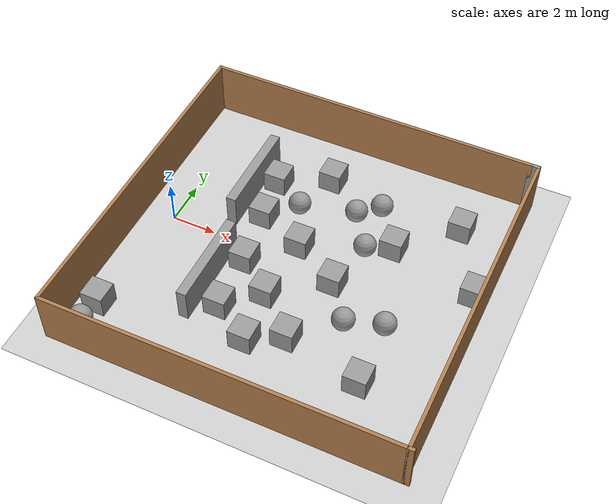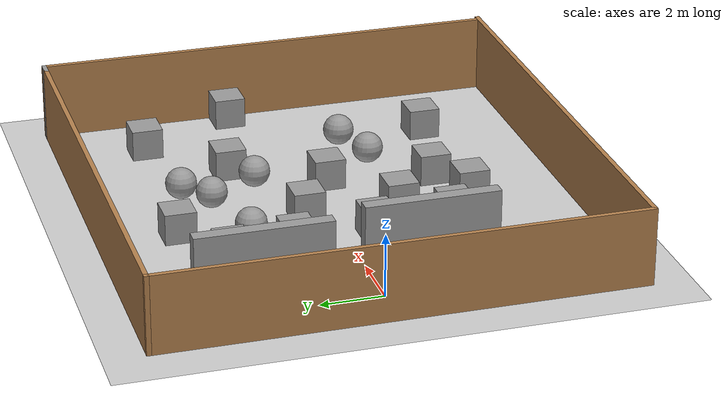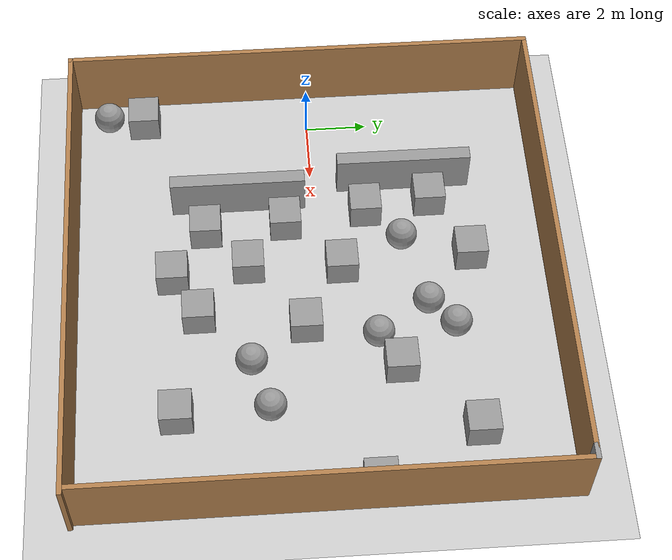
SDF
<sdf version="1.7">
 <world name="default">
  <light name="sun" type="directional">
   <pose>0 0 10 0 -0 0</pose>
   <diffuse>0.8 0.8 0.8 1</diffuse>
   <specular>0.2 0.2 0.2 1</specular>
   <attenuation>
    <range>1000</range>
    <constant>0.9</constant>
    <linear>0.01</linear>
    <quadratic>0.001</quadratic>
   </attenuation>
   <direction>-0.5 0.1 -0.9</direction>
   <spot><inner_angle>0</inner_angle><outer_angle>0</outer_angle><falloff>0</falloff></spot>
  </light>
  <model name="ground_plane">
   <static>1</static>
   <link name="link">
    <collision name="collision">
     <geometry><plane><normal>0 0 1</normal><size>100 100</size></plane></geometry>
     <surface><friction><ode><mu>100</mu><mu2>50</mu2></ode></friction></surface>
    </collision>
    <visual name="visual">
     <cast_shadows>0</cast_shadows>
     <geometry><plane><normal>0 0 1</normal><size>100 100</size></plane></geometry>
     <material>
      <script><uri>file://media/materials/scripts/gazebo.material</uri><name>Gazebo/Grey</name></script>
     </material>
    </visual>
   </link>
  </model>
  <gravity>0 0 -9.8</gravity>
  <magnetic_field>6e-06 2.3e-05 -4.2e-05</magnetic_field>
  <atmosphere type="adiabatic"/>
  <physics type="ode">
   <max_step_size>0.001</max_step_size>
   <real_time_factor>1</real_time_factor>
   <real_time_update_rate>1000</real_time_update_rate>
  </physics>
  <scene><ambient>0.4 0.4 0.4 1</ambient><background>0.7 0.7 0.7 1</background><shadows>1</shadows></scene>
  <spherical_coordinates>
   <surface_model>EARTH_WGS84</surface_model>
   <latitude_deg>0</latitude_deg>
   <longitude_deg>0</longitude_deg>
   <elevation>0</elevation>
   <heading_deg>0</heading_deg>
  </spherical_coordinates>
  <model name="square01">
   <pose>6.34279 -0.168803 0 0 -0 0</pose>
   <link name="Wall_11">
    <collision name="Wall_11_Collision">
     <geometry><box><size>15.25 0.15 2.5</size></box></geometry>
     <pose>0 0 1.25 0 -0 0</pose>
    </collision>
    <visual name="Wall_11_Visual">
     <pose>0 0 1.25 0 -0 0</pose>
     <geometry><box><size>15.25 0.15 2.5</size></box></geometry>
     <material>
      <script><uri>file://media/materials/scripts/gazebo.material</uri><name>Gazebo/Wood</name></script>
      <ambient>1 1 1 1</ambient>
     </material>
     <meta><layer>0</layer></meta>
    </visual>
    <pose>-7.8 0 0 0 -0 -1.5708</pose>
   </link>
   <link name="Wall_13">
    <collision name="Wall_13_Collision">
     <geometry><box><size>15.75 0.15 2.5</size></box></geometry>
     <pose>0 0 1.25 0 -0 0</pose>
    </collision>
    <visual name="Wall_13_Visual">
     <pose>0 0 1.25 0 -0 0</pose>
     <geometry><box><size>15.75 0.15 2.5</size></box></geometry>
     <material>
      <script><uri>file://media/materials/scripts/gazebo.material</uri><name>Gazebo/Wood</name></script>
      <ambient>1 1 1 1</ambient>
     </material>
     <meta><layer>0</layer></meta>
    </visual>
    <pose>0 -7.55 0 0 -0 0</pose>
   </link>
   <link name="Wall_15">
    <collision name="Wall_15_Collision">
     <geometry><box><size>15.25 0.15 2.5</size></box></geometry>
     <pose>0 0 1.25 0 -0 0</pose>
    </collision>
    <visual name="Wall_15_Visual">
     <pose>0 0 1.25 0 -0 0</pose>
     <geometry><box><size>15.25 0.15 2.5</size></box></geometry>
     <material>
      <script><uri>file://media/materials/scripts/gazebo.material</uri><name>Gazebo/Wood</name></script>
      <ambient>1 1 1 1</ambient>
     </material>
     <meta><layer>0</layer></meta>
    </visual>
    <pose>-0.25 7.55 0 0 -0 0</pose>
   </link>
   <link name="Wall_16">
    <collision name="Wall_16_Collision">
     <geometry><box><size>0.5 0.15 2.5</size></box></geometry>
     <pose>0 0 1.25 0 -0 0</pose>
    </collision>
    <visual name="Wall_16_Visual">
     <pose>0 0 1.25 0 -0 0</pose>
     <geometry><box><size>0.5 0.15 2.5</size></box></geometry>
     <material>
      <script><uri>file://media/materials/scripts/gazebo.material</uri><name>Gazebo/Grey</name></script>
      <ambient>1 1 1 1</ambient>
     </material>
     <meta><layer>0</layer></meta>
    </visual>
    <pose>7.475 7.55 0 0 -0 0</pose>
   </link>
   <link name="Wall_17">
    <collision name="Wall_17_Collision">
     <geometry><box><size>15.25 0.15 2.5</size></box></geometry>
     <pose>0 0 1.25 0 -0 0</pose>
    </collision>
    <visual name="Wall_17_Visual">
     <pose>0 0 1.25 0 -0 0</pose>
     <geometry><box><size>15.25 0.15 2.5</size></box></geometry>
     <material>
      <script><uri>file://media/materials/scripts/gazebo.material</uri><name>Gazebo/Wood</name></script>
      <ambient>1 1 1 1</ambient>
     </material>
     <meta><layer>0</layer></meta>
    </visual>
    <pose>7.65 0 0 0 -0 -1.5708</pose>
   </link>
   <static>1</static>
  </model>
  <model name="unit_box">
   <pose>5.47481 4.93047 0.499995 0 1e-05 5e-06</pose>
   <link name="link">
    <inertial>
     <mass>1</mass>
     <inertia>
      <ixx>0.166667</ixx>
      <ixy>0</ixy>
      <ixz>0</ixz>
      <iyy>0.166667</iyy>
      <iyz>0</iyz>
      <izz>0.166667</izz>
     </inertia>
    </inertial>
    <collision name="collision"><geometry><box><size>1 1 1</size></box></geometry></collision>
    <visual name="visual">
     <geometry><box><size>1 1 1</size></box></geometry>
     <material>
      <script><name>Gazebo/Grey</name><uri>file://media/materials/scripts/gazebo.material</uri></script>
     </material>
    </visual>
   </link>
  </model>
  <model name="unit_box_2">
   <pose>7.32302 -3.81277 0.499995 -1e-05 0 0</pose>
   <link name="link">
    <inertial>
     <mass>1</mass>
     <inertia>
      <ixx>0.166667</ixx>
      <ixy>0</ixy>
      <ixz>0</ixz>
      <iyy>0.166667</iyy>
      <iyz>0</iyz>
      <izz>0.166667</izz>
     </inertia>
    </inertial>
    <collision name="collision"><geometry><box><size>1 1 1</size></box></geometry></collision>
    <visual name="visual">
     <geometry><box><size>1 1 1</size></box></geometry>
     <material>
      <script><name>Gazebo/Grey</name><uri>file://media/materials/scripts/gazebo.material</uri></script>
     </material>
    </visual>
   </link>
  </model>
  <model name="unit_sphere">
   <pose>8.15725 4.18967 0.5 0 -0 0</pose>
   <link name="link">
    <inertial>
     <mass>1</mass>
     <inertia><ixx>0.1</ixx><ixy>0</ixy><ixz>0</ixz><iyy>0.1</iyy><iyz>0</iyz><izz>0.1</izz></inertia>
    </inertial>
    <collision name="collision"><geometry><sphere><radius>0.5</radius></sphere></geometry></collision>
    <visual name="visual">
     <geometry><sphere><radius>0.5</radius></sphere></geometry>
     <material>
      <script><name>Gazebo/Grey</name><uri>file://media/materials/scripts/gazebo.material</uri></script>
     </material>
    </visual>
   </link>
  </model>
  <model name="unit_box_3">
   <pose>5.57633 -2.18999 0.499995 -1e-05 0 0</pose>
   <link name="link">
    <inertial>
     <mass>1</mass>
     <inertia>
      <ixx>0.166667</ixx>
      <ixy>0</ixy>
      <ixz>0</ixz>
      <iyy>0.166667</iyy>
      <iyz>0</iyz>
      <izz>0.166667</izz>
     </inertia>
    </inertial>
    <collision name="collision"><geometry><box><size>1 1 1</size></box></geometry></collision>
    <visual name="visual">
     <geometry><box><size>1 1 1</size></box></geometry>
     <material>
      <script><name>Gazebo/Grey</name><uri>file://media/materials/scripts/gazebo.material</uri></script>
     </material>
    </visual>
   </link>
  </model>
  <model name="unit_sphere_1">
   <pose>4.81301 2.77811 0.5 0 -0 0</pose>
   <link name="link">
    <inertial>
     <mass>1</mass>
     <inertia><ixx>0.1</ixx><ixy>0</ixy><ixz>0</ixz><iyy>0.1</iyy><iyz>0</iyz><izz>0.1</izz></inertia>
    </inertial>
    <collision name="collision"><geometry><sphere><radius>0.5</radius></sphere></geometry></collision>
    <visual name="visual">
     <geometry><sphere><radius>0.5</radius></sphere></geometry>
     <material>
      <script><name>Gazebo/Grey</name><uri>file://media/materials/scripts/gazebo.material</uri></script>
     </material>
    </visual>
   </link>
  </model>
  <model name="unit_box_5">
   <pose>10.8002 -4.57428 0.499995 -1e-05 0 0</pose>
   <link name="link">
    <inertial>
     <mass>1</mass>
     <inertia>
      <ixx>0.166667</ixx>
      <ixy>0</ixy>
      <ixz>0</ixz>
      <iyy>0.166667</iyy>
      <iyz>0</iyz>
      <izz>0.166667</izz>
     </inertia>
    </inertial>
    <collision name="collision"><geometry><box><size>1 1 1</size></box></geometry></collision>
    <visual name="visual">
     <geometry><box><size>1 1 1</size></box></geometry>
     <material>
      <script><name>Gazebo/Grey</name><uri>file://media/materials/scripts/gazebo.material</uri></script>
     </material>
    </visual>
   </link>
  </model>
  <model name="unit_box1_clone_0">
   <link name="link">
    <inertial>
     <mass>2.89311</mass>
     <inertia><ixx>5.09745</ixx><ixy>0</ixy><ixz>0</ixz><iyy>0.604244</iyy><iyz>0</iyz><izz>4.58584</izz></inertia>
    </inertial>
    <visual name="visual">
     <geometry><box><size>0.438301 4.33924 1.52124</size></box></geometry>
     <material>
      <script><name>Gazebo/Grey</name><uri>file://media/materials/scripts/gazebo.material</uri></script>
      <shader type="pixel"/>
     </material>
    </visual>
    <collision name="collision">
     <geometry><box><size>0.438301 4.33924 1.52124</size></box></geometry>
     <surface>
      <friction>
       <ode><mu>1</mu><mu2>1</mu2><fdir1>0 0 0</fdir1><slip1>0</slip1><slip2>0</slip2></ode>
       <torsional>
        <coefficient>1</coefficient>
        <patch_radius>0</patch_radius>
        <surface_radius>0</surface_radius>
        <use_patch_radius>1</use_patch_radius>
        <ode><slip>0</slip></ode>
       </torsional>
      </friction>
      <bounce><restitution_coefficient>0</restitution_coefficient><threshold>1e+06</threshold></bounce>
      <contact>
       <collide_without_contact>0</collide_without_contact>
       <collide_without_contact_bitmask>1</collide_without_contact_bitmask>
       <collide_bitmask>1</collide_bitmask>
       <ode>
        <soft_cfm>0</soft_cfm>
        <soft_erp>0.2</soft_erp>
        <kp>1e+13</kp>
        <kd>1</kd>
        <max_vel>0.01</max_vel>
        <min_depth>0</min_depth>
       </ode>
       <bullet>
        <split_impulse>1</split_impulse>
        <split_impulse_penetration_threshold>-0.01</split_impulse_penetration_threshold>
        <soft_cfm>0</soft_cfm>
        <soft_erp>0.2</soft_erp>
        <kp>1e+13</kp>
        <kd>1</kd>
       </bullet>
      </contact>
     </surface>
    </collision>
   </link>
   <static>0</static>
   <pose>2.43527 3.02219 0.76062 0 -0 -2.6e-05</pose>
  </model>
  <model name="unit_box_2_clone">
   <pose>5.84287 -4.60435 0.499995 -1e-05 0 0</pose>
   <link name="link">
    <inertial>
     <mass>1</mass>
     <inertia>
      <ixx>0.166667</ixx>
      <ixy>0</ixy>
      <ixz>0</ixz>
      <iyy>0.166667</iyy>
      <iyz>0</iyz>
      <izz>0.166667</izz>
     </inertia>
    </inertial>
    <collision name="collision"><geometry><box><size>1 1 1</size></box></geometry></collision>
    <visual name="visual">
     <geometry><box><size>1 1 1</size></box></geometry>
     <material>
      <script><name>Gazebo/Grey</name><uri>file://media/materials/scripts/gazebo.material</uri></script>
     </material>
    </visual>
   </link>
  </model>
  <model name="unit_box_3_clone">
   <pose>3.29407 3.798 0.499995 0 1e-05 5e-06</pose>
   <link name="link">
    <inertial>
     <mass>1</mass>
     <inertia>
      <ixx>0.166667</ixx>
      <ixy>0</ixy>
      <ixz>0</ixz>
      <iyy>0.166667</iyy>
      <iyz>0</iyz>
      <izz>0.166667</izz>
     </inertia>
    </inertial>
    <collision name="collision"><geometry><box><size>1 1 1</size></box></geometry></collision>
    <visual name="visual">
     <geometry><box><size>1 1 1</size></box></geometry>
     <material>
      <script><name>Gazebo/Grey</name><uri>file://media/materials/scripts/gazebo.material</uri></script>
     </material>
    </visual>
   </link>
  </model>
  <model name="unit_box_5_clone">
   <pose>11.7298 4.57334 0.499995 -1e-05 0 0</pose>
   <link name="link">
    <inertial>
     <mass>1</mass>
     <inertia>
      <ixx>0.166667</ixx>
      <ixy>0</ixy>
      <ixz>0</ixz>
      <iyy>0.166667</iyy>
      <iyz>0</iyz>
      <izz>0.166667</izz>
     </inertia>
    </inertial>
    <collision name="collision"><geometry><box><size>1 1 1</size></box></geometry></collision>
    <visual name="visual">
     <geometry><box><size>1 1 1</size></box></geometry>
     <material>
      <script><name>Gazebo/Grey</name><uri>file://media/materials/scripts/gazebo.material</uri></script>
     </material>
    </visual>
   </link>
  </model>
  <model name="unit_box_5_clone_0">
   <pose>13.4178 1.38808 0.5 0 -0 8e-06</pose>
   <link name="link">
    <inertial>
     <mass>1</mass>
     <inertia>
      <ixx>0.166667</ixx>
      <ixy>0</ixy>
      <ixz>0</ixz>
      <iyy>0.166667</iyy>
      <iyz>0</iyz>
      <izz>0.166667</izz>
     </inertia>
    </inertial>
    <collision name="collision"><geometry><box><size>1 1 1</size></box></geometry></collision>
    <visual name="visual">
     <geometry><box><size>1 1 1</size></box></geometry>
     <material>
      <script><name>Gazebo/Grey</name><uri>file://media/materials/scripts/gazebo.material</uri></script>
     </material>
    </visual>
   </link>
  </model>
  <model name="unit_sphere_0_clone">
   <pose>-0.529661 -6.63358 0.5 0 -0 0</pose>
   <link name="link">
    <inertial>
     <mass>1</mass>
     <inertia><ixx>0.1</ixx><ixy>0</ixy><ixz>0</ixz><iyy>0.1</iyy><iyz>0</iyz><izz>0.1</izz></inertia>
    </inertial>
    <collision name="collision"><geometry><sphere><radius>0.5</radius></sphere></geometry></collision>
    <visual name="visual">
     <geometry><sphere><radius>0.5</radius></sphere></geometry>
     <material>
      <script><name>Gazebo/Grey</name><uri>file://media/materials/scripts/gazebo.material</uri></script>
     </material>
    </visual>
   </link>
  </model>
  <model name="unit_box_5_clone_1">
   <pose>-0.436386 -5.45594 0.499995 -1e-05 0 0</pose>
   <link name="link">
    <inertial>
     <mass>1</mass>
     <inertia>
      <ixx>0.166667</ixx>
      <ixy>0</ixy>
      <ixz>0</ixz>
      <iyy>0.166667</iyy>
      <iyz>0</iyz>
      <izz>0.166667</izz>
     </inertia>
    </inertial>
    <collision name="collision"><geometry><box><size>1 1 1</size></box></geometry></collision>
    <visual name="visual">
     <geometry><box><size>1 1 1</size></box></geometry>
     <material>
      <script><name>Gazebo/Grey</name><uri>file://media/materials/scripts/gazebo.material</uri></script>
     </material>
    </visual>
   </link>
  </model>
  <model name="unit_box_1_clone_clone">
   <pose>3.59914 1.6917 0.499995 0 1e-05 5e-06</pose>
   <link name="link">
    <inertial>
     <mass>1</mass>
     <inertia>
      <ixx>0.166667</ixx>
      <ixy>0</ixy>
      <ixz>0</ixz>
      <iyy>0.166667</iyy>
      <iyz>0</iyz>
      <izz>0.166667</izz>
     </inertia>
    </inertial>
    <collision name="collision"><geometry><box><size>1 1 1</size></box></geometry></collision>
    <visual name="visual">
     <geometry><box><size>1 1 1</size></box></geometry>
     <material>
      <script><name>Gazebo/Grey</name><uri>file://media/materials/scripts/gazebo.material</uri></script>
     </material>
    </visual>
   </link>
  </model>
  <model name="unit_sphere_clone">
   <pose>7.26706 3.41687 0.5 0 -0 0</pose>
   <link name="link">
    <inertial>
     <mass>1</mass>
     <inertia><ixx>0.1</ixx><ixy>0</ixy><ixz>0</ixz><iyy>0.1</iyy><iyz>0</iyz><izz>0.1</izz></inertia>
    </inertial>
    <collision name="collision"><geometry><sphere><radius>0.5</radius></sphere></geometry></collision>
    <visual name="visual">
     <geometry><sphere><radius>0.5</radius></sphere></geometry>
     <material>
      <script><name>Gazebo/Grey</name><uri>file://media/materials/scripts/gazebo.material</uri></script>
     </material>
    </visual>
   </link>
  </model>
  <model name="unit_box1_clone_clone_clone">
   <link name="link">
    <inertial>
     <mass>2.89311</mass>
     <inertia><ixx>5.09745</ixx><ixy>0</ixy><ixz>0</ixz><iyy>0.604244</iyy><iyz>0</iyz><izz>4.58584</izz></inertia>
    </inertial>
    <visual name="visual">
     <geometry><box><size>0.438301 4.33924 1.52124</size></box></geometry>
     <material>
      <script><name>Gazebo/Grey</name><uri>file://media/materials/scripts/gazebo.material</uri></script>
      <shader type="pixel"/>
     </material>
    </visual>
    <collision name="collision">
     <geometry><box><size>0.438301 4.33924 1.52124</size></box></geometry>
     <surface>
      <friction>
       <ode><mu>1</mu><mu2>1</mu2><fdir1>0 0 0</fdir1><slip1>0</slip1><slip2>0</slip2></ode>
       <torsional>
        <coefficient>1</coefficient>
        <patch_radius>0</patch_radius>
        <surface_radius>0</surface_radius>
        <use_patch_radius>1</use_patch_radius>
        <ode><slip>0</slip></ode>
       </torsional>
      </friction>
      <bounce><restitution_coefficient>0</restitution_coefficient><threshold>1e+06</threshold></bounce>
      <contact>
       <collide_without_contact>0</collide_without_contact>
       <collide_without_contact_bitmask>1</collide_without_contact_bitmask>
       <collide_bitmask>1</collide_bitmask>
       <ode>
        <soft_cfm>0</soft_cfm>
        <soft_erp>0.2</soft_erp>
        <kp>1e+13</kp>
        <kd>1</kd>
        <max_vel>0.01</max_vel>
        <min_depth>0</min_depth>
       </ode>
       <bullet>
        <split_impulse>1</split_impulse>
        <split_impulse_penetration_threshold>-0.01</split_impulse_penetration_threshold>
        <soft_cfm>0</soft_cfm>
        <soft_erp>0.2</soft_erp>
        <kp>1e+13</kp>
        <kd>1</kd>
       </bullet>
      </contact>
     </surface>
    </collision>
   </link>
   <static>0</static>
   <pose>3.032 -2.4107 0.76062 0 1e-06 1.2e-05</pose>
  </model>
  <model name="unit_box_1_clone_clone_0_clone_clone_clone">
   <pose>5.73556 0.787158 0.499995 0 -1e-05 0.003</pose>
   <link name="link">
    <inertial>
     <mass>1</mass>
     <inertia>
      <ixx>0.166667</ixx>
      <ixy>0</ixy>
      <ixz>0</ixz>
      <iyy>0.166667</iyy>
      <iyz>0</iyz>
      <izz>0.166667</izz>
     </inertia>
    </inertial>
    <collision name="collision"><geometry><box><size>1 1 1</size></box></geometry></collision>
    <visual name="visual">
     <geometry><box><size>1 1 1</size></box></geometry>
     <material>
      <script><name>Gazebo/Grey</name><uri>file://media/materials/scripts/gazebo.material</uri></script>
     </material>
    </visual>
   </link>
  </model>
  <model name="unit_box_1_clone_clone_0_clone_clone_clone_clone">
   <pose>3.97556 -0.930965 0.499995 -1e-05 -0 0.003</pose>
   <link name="link">
    <inertial>
     <mass>1</mass>
     <inertia>
      <ixx>0.166667</ixx>
      <ixy>0</ixy>
      <ixz>0</ixz>
      <iyy>0.166667</iyy>
      <iyz>0</iyz>
      <izz>0.166667</izz>
     </inertia>
    </inertial>
    <collision name="collision"><geometry><box><size>1 1 1</size></box></geometry></collision>
    <visual name="visual">
     <geometry><box><size>1 1 1</size></box></geometry>
     <material>
      <script><name>Gazebo/Grey</name><uri>file://media/materials/scripts/gazebo.material</uri></script>
     </material>
    </visual>
   </link>
  </model>
  <model name="unit_box_3_clone_0">
   <pose>4.13518 -3.50717 0.499995 1e-05 -0 0</pose>
   <link name="link">
    <inertial>
     <mass>1</mass>
     <inertia>
      <ixx>0.166667</ixx>
      <ixy>0</ixy>
      <ixz>0</ixz>
      <iyy>0.166667</iyy>
      <iyz>0</iyz>
      <izz>0.166667</izz>
     </inertia>
    </inertial>
    <collision name="collision"><geometry><box><size>1 1 1</size></box></geometry></collision>
    <visual name="visual">
     <geometry><box><size>1 1 1</size></box></geometry>
     <material>
      <script><name>Gazebo/Grey</name><uri>file://media/materials/scripts/gazebo.material</uri></script>
     </material>
    </visual>
   </link>
  </model>
  <model name="unit_box_1_clone_clone_0_clone_clone_0_clone_clone">
   <pose>9.45393 2.35668 0.499995 0 1e-05 0.00044</pose>
   <link name="link">
    <inertial>
     <mass>1</mass>
     <inertia>
      <ixx>0.166667</ixx>
      <ixy>0</ixy>
      <ixz>0</ixz>
      <iyy>0.166667</iyy>
      <iyz>0</iyz>
      <izz>0.166667</izz>
     </inertia>
    </inertial>
    <collision name="collision"><geometry><box><size>1 1 1</size></box></geometry></collision>
    <visual name="visual">
     <geometry><box><size>1 1 1</size></box></geometry>
     <material>
      <script><name>Gazebo/Grey</name><uri>file://media/materials/scripts/gazebo.material</uri></script>
     </material>
    </visual>
   </link>
  </model>
  <model name="unit_sphere_0_clone_0">
   <pose>10.7307 -1.72446 0.5 0 -0 0</pose>
   <link name="link">
    <inertial>
     <mass>1</mass>
     <inertia><ixx>0.1</ixx><ixy>0</ixy><ixz>0</ixz><iyy>0.1</iyy><iyz>0</iyz><izz>0.1</izz></inertia>
    </inertial>
    <collision name="collision"><geometry><sphere><radius>0.5</radius></sphere></geometry></collision>
    <visual name="visual">
     <geometry><sphere><radius>0.5</radius></sphere></geometry>
     <material>
      <script><name>Gazebo/Grey</name><uri>file://media/materials/scripts/gazebo.material</uri></script>
     </material>
    </visual>
   </link>
  </model>
  <model name="unit_box_2_clone_0">
   <pose>7.85555 -0.481207 0.499995 0 -1e-05 0</pose>
   <link name="link">
    <inertial>
     <mass>1</mass>
     <inertia>
      <ixx>0.166667</ixx>
      <ixy>0</ixy>
      <ixz>0</ixz>
      <iyy>0.166667</iyy>
      <iyz>0</iyz>
      <izz>0.166667</izz>
     </inertia>
    </inertial>
    <collision name="collision"><geometry><box><size>1 1 1</size></box></geometry></collision>
    <visual name="visual">
     <geometry><box><size>1 1 1</size></box></geometry>
     <material>
      <script><name>Gazebo/Grey</name><uri>file://media/materials/scripts/gazebo.material</uri></script>
     </material>
    </visual>
   </link>
  </model>
  <model name="unit_sphere_0_clone_0_clone">
   <pose>9.12241 -2.23189 0.5 0 -0 0</pose>
   <link name="link">
    <inertial>
     <mass>1</mass>
     <inertia><ixx>0.1</ixx><ixy>0</ixy><ixz>0</ixz><iyy>0.1</iyy><iyz>0</iyz><izz>0.1</izz></inertia>
    </inertial>
    <collision name="collision"><geometry><sphere><radius>0.5</radius></sphere></geometry></collision>
    <visual name="visual">
     <geometry><sphere><radius>0.5</radius></sphere></geometry>
     <material>
      <script><name>Gazebo/Grey</name><uri>file://media/materials/scripts/gazebo.material</uri></script>
     </material>
    </visual>
   </link>
  </model>
  <model name="unit_sphere_0_clone_0_clone_0">
   <pose>8.37807 1.7511 0.5 0 -0 0</pose>
   <link name="link">
    <inertial>
     <mass>1</mass>
     <inertia><ixx>0.1</ixx><ixy>0</ixy><ixz>0</ixz><iyy>0.1</iyy><iyz>0</iyz><izz>0.1</izz></inertia>
    </inertial>
    <collision name="collision"><geometry><sphere><radius>0.5</radius></sphere></geometry></collision>
    <visual name="visual">
     <geometry><sphere><radius>0.5</radius></sphere></geometry>
     <material>
      <script><name>Gazebo/Grey</name><uri>file://media/materials/scripts/gazebo.material</uri></script>
     </material>
    </visual>
   </link>
  </model>
 </world>
</sdf>
